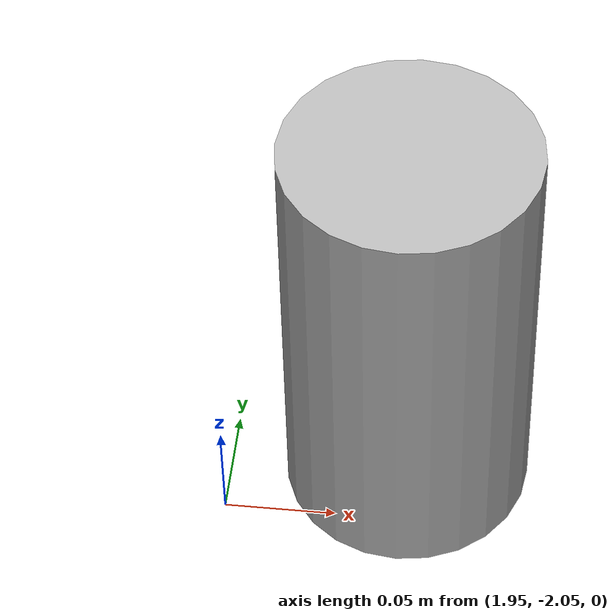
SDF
<sdf version="1.6">
 <world name="myworld">
  <model name="CropWithWeed">
   <link name="link">
    <pose>0 0 0.115 0 -0 0</pose>
    <inertial>
     <mass>0.39</mass>
     <inertia><ixx>0.00058</ixx><ixy>0</ixy><ixz>0</ixz><iyy>0.00058</iyy><iyz>0</iyz><izz>0.00019</izz></inertia>
    </inertial>
    <collision name="collision">
     <geometry><cylinder><radius>0.055</radius><length>0.2</length></cylinder></geometry>
    </collision>
    <visual name="visual">
     <geometry><cylinder><radius>0.055</radius><length>0.2</length></cylinder></geometry>
     <material>
      <script>
       <uri>model://CropWithWeed/materials/scripts</uri>
       <uri>model://CropWithWeed/materials/textures</uri>
       <name>CropWithWeed/Diffuse</name>
      </script>
     </material>
    </visual>
   </link>
   <pose>2.02944 -2.01728 -0.015008 0 -0 0</pose>
  </model>
 </world>
</sdf>
